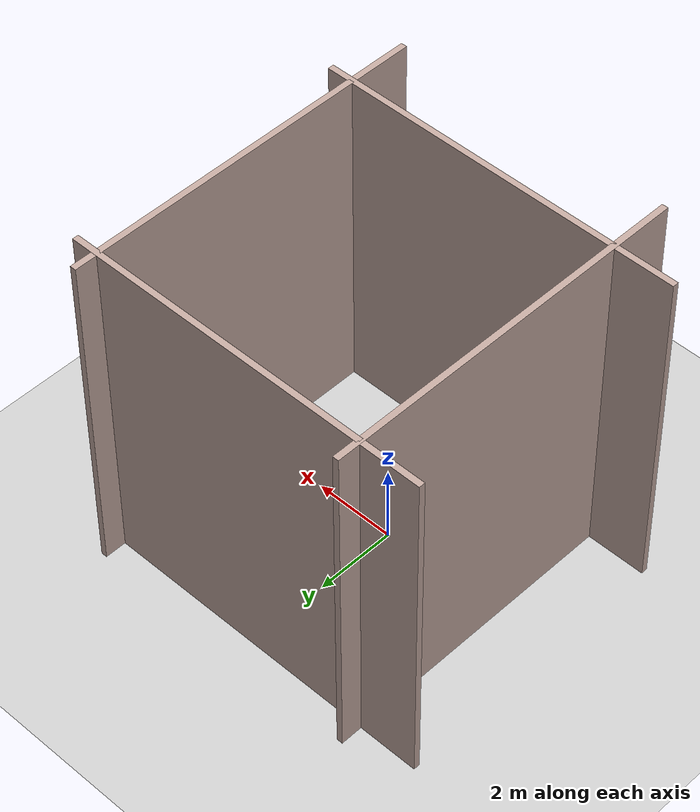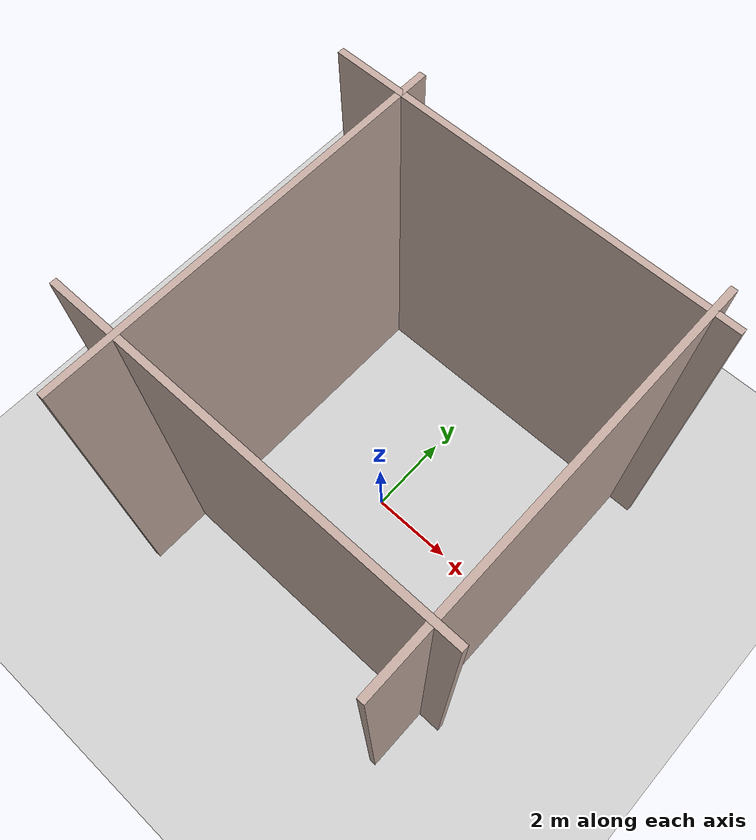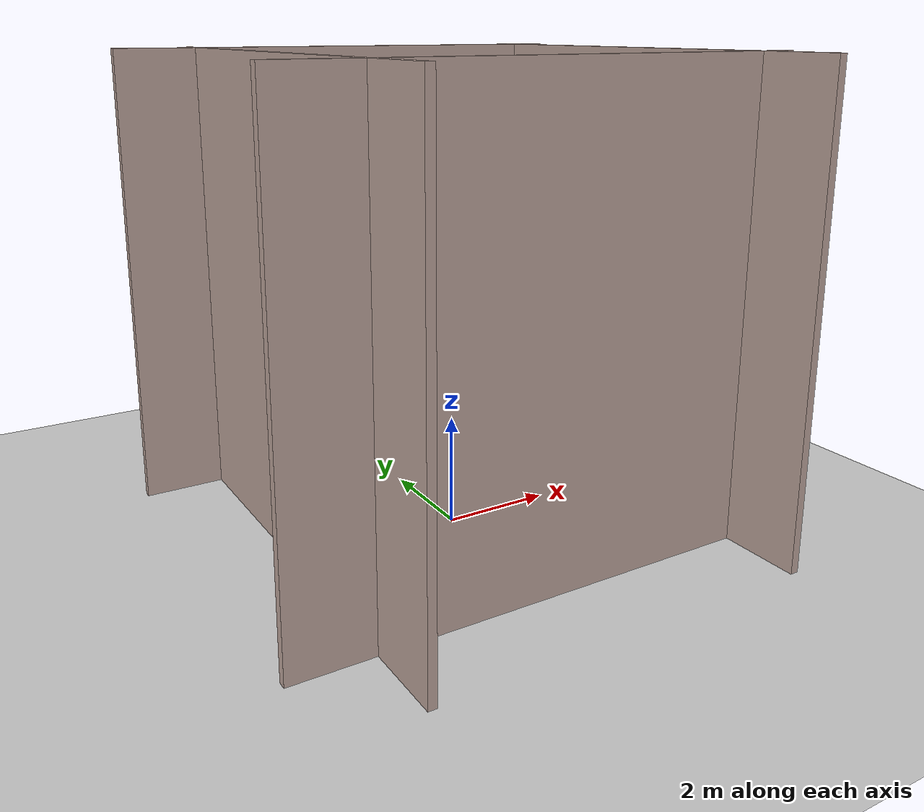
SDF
<sdf version="1.7">
 <world name="default">
  <light name="sun" type="directional">
   <pose>0 0 10 0 -0 0</pose>
   <diffuse>0.8 0.8 0.8 1</diffuse>
   <specular>0.2 0.2 0.2 1</specular>
   <attenuation>
    <range>1000</range>
    <constant>0.9</constant>
    <linear>0.01</linear>
    <quadratic>0.001</quadratic>
   </attenuation>
   <direction>-0.5 0.1 -0.9</direction>
   <spot><inner_angle>0</inner_angle><outer_angle>0</outer_angle><falloff>0</falloff></spot>
  </light>
  <model name="ground_plane">
   <static>1</static>
   <link name="link">
    <collision name="collision">
     <geometry><plane><normal>0 0 1</normal><size>100 100</size></plane></geometry>
     <surface>
      <contact><collide_bitmask>65535</collide_bitmask></contact>
      <friction><ode><mu>100</mu><mu2>50</mu2></ode></friction>
     </surface>
    </collision>
    <visual name="visual">
     <cast_shadows>0</cast_shadows>
     <geometry><plane><normal>0 0 1</normal><size>100 100</size></plane></geometry>
     <material>
      <script><uri>file://media/materials/scripts/gazebo.material</uri><name>Gazebo/Grey</name></script>
     </material>
    </visual>
   </link>
  </model>
  <gravity>0 0 -9.8</gravity>
  <magnetic_field>6e-06 2.3e-05 -4.2e-05</magnetic_field>
  <atmosphere type="adiabatic"/>
  <physics type="ode">
   <max_step_size>0.001</max_step_size>
   <real_time_factor>1</real_time_factor>
   <real_time_update_rate>1000</real_time_update_rate>
  </physics>
  <scene><ambient>0.4 0.4 0.4 1</ambient><background>0.7 0.7 0.7 1</background><shadows>1</shadows></scene>
  <spherical_coordinates>
   <surface_model>EARTH_WGS84</surface_model>
   <latitude_deg>0</latitude_deg>
   <longitude_deg>0</longitude_deg>
   <elevation>0</elevation>
   <heading_deg>0</heading_deg>
  </spherical_coordinates>
  <model name="tunnel_wall">
   <pose>-3.5 0 0 0 -0 0</pose>
   <link name="Wall_0">
    <collision name="Wall_0_Collision">
     <geometry><box><size>9.15 0.15 8.5</size></box></geometry>
     <pose>0 0 4.25 0 -0 0</pose>
    </collision>
    <visual name="Wall_0_Visual">
     <pose>0 0 4.25 0 -0 0</pose>
     <geometry><box><size>9.15 0.15 8.5</size></box></geometry>
     <material>
      <script><uri>file://media/materials/scripts/gazebo.material</uri><name>Gazebo/Grey</name></script>
      <ambient>0.760784 0.662745 0.627451 1</ambient>
     </material>
     <meta><layer>0</layer></meta>
    </visual>
    <pose>7.4625 0 0 0 -0 1.5708</pose>
   </link>
   <static>1</static>
  </model>
  <model name="tunnel_wall_clone">
   <pose>0 -3.5 0 0 -0 1.5717</pose>
   <link name="Wall_0">
    <collision name="Wall_0_Collision">
     <geometry><box><size>9.15 0.15 8.5</size></box></geometry>
     <pose>0 0 4.25 0 -0 0</pose>
    </collision>
    <visual name="Wall_0_Visual">
     <pose>0 0 4.25 0 -0 0</pose>
     <geometry><box><size>9.15 0.15 8.5</size></box></geometry>
     <material>
      <script><uri>file://media/materials/scripts/gazebo.material</uri><name>Gazebo/Grey</name></script>
      <ambient>0.760784 0.662745 0.627451 1</ambient>
     </material>
     <meta><layer>0</layer></meta>
    </visual>
    <pose>7.4625 0 0 0 -0 1.5708</pose>
   </link>
   <static>1</static>
  </model>
  <model name="tunnel_wall_clone_0">
   <pose>-10.5 0 0 0 -0 0</pose>
   <link name="Wall_0">
    <collision name="Wall_0_Collision">
     <geometry><box><size>9.15 0.15 8.5</size></box></geometry>
     <pose>0 0 4.25 0 -0 0</pose>
    </collision>
    <visual name="Wall_0_Visual">
     <pose>0 0 4.25 0 -0 0</pose>
     <geometry><box><size>9.15 0.15 8.5</size></box></geometry>
     <material>
      <script><uri>file://media/materials/scripts/gazebo.material</uri><name>Gazebo/Grey</name></script>
      <ambient>0.760784 0.662745 0.627451 1</ambient>
     </material>
     <meta><layer>0</layer></meta>
    </visual>
    <pose>7.4625 0 0 0 -0 1.5708</pose>
   </link>
   <static>1</static>
  </model>
  <model name="tunnel_wall_clone_clone">
   <pose>0 -10.5 0 0 -0 1.5717</pose>
   <link name="Wall_0">
    <collision name="Wall_0_Collision">
     <geometry><box><size>9.15 0.15 8.5</size></box></geometry>
     <pose>0 0 4.25 0 -0 0</pose>
    </collision>
    <visual name="Wall_0_Visual">
     <pose>0 0 4.25 0 -0 0</pose>
     <geometry><box><size>9.15 0.15 8.5</size></box></geometry>
     <material>
      <script><uri>file://media/materials/scripts/gazebo.material</uri><name>Gazebo/Grey</name></script>
      <ambient>0.760784 0.662745 0.627451 1</ambient>
     </material>
     <meta><layer>0</layer></meta>
    </visual>
    <pose>7.4625 0 0 0 -0 1.5708</pose>
   </link>
   <static>1</static>
  </model>
 </world>
</sdf>
